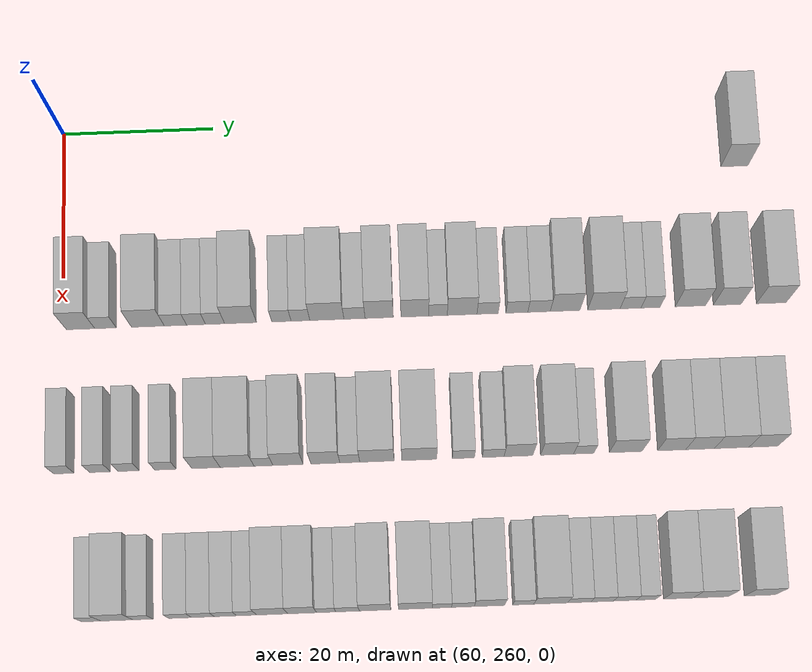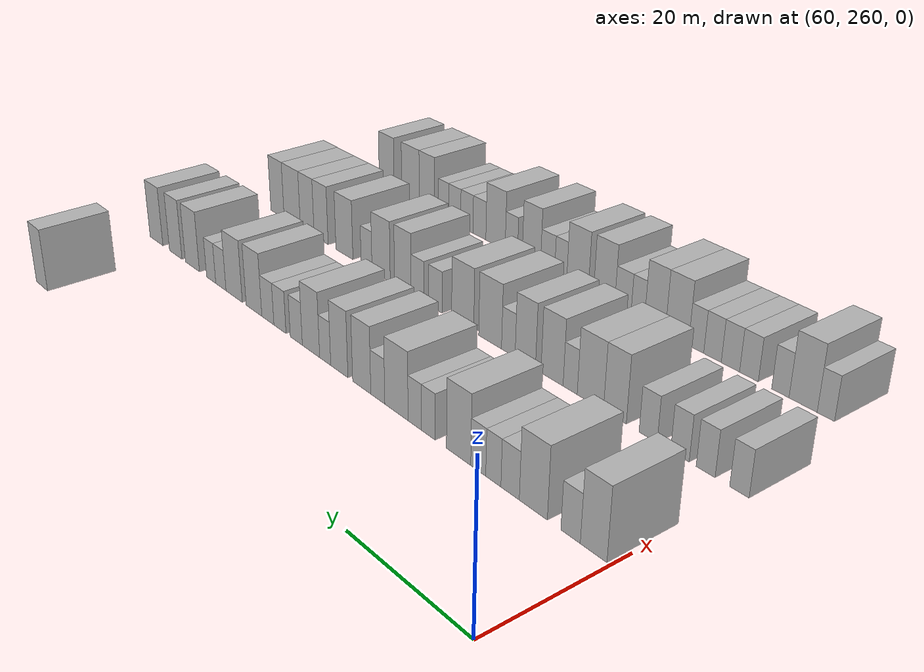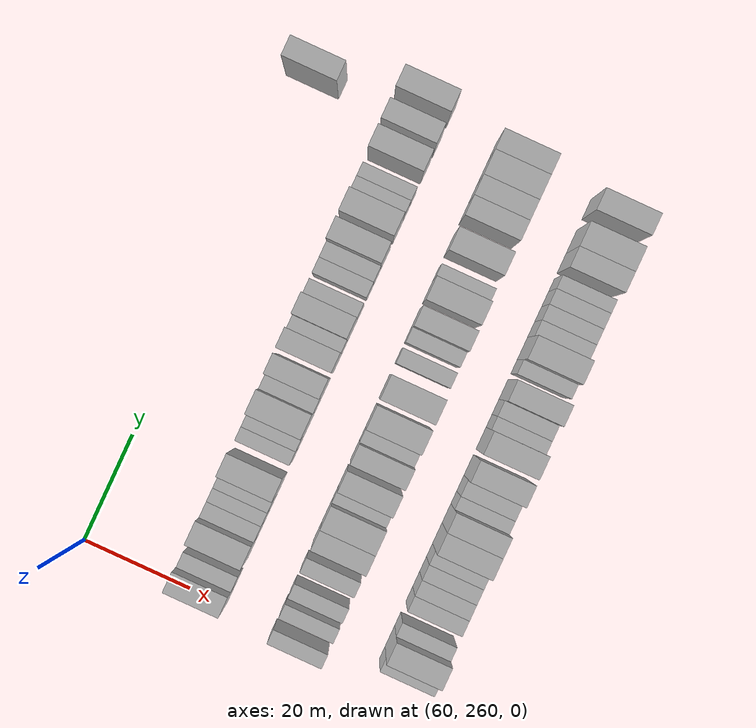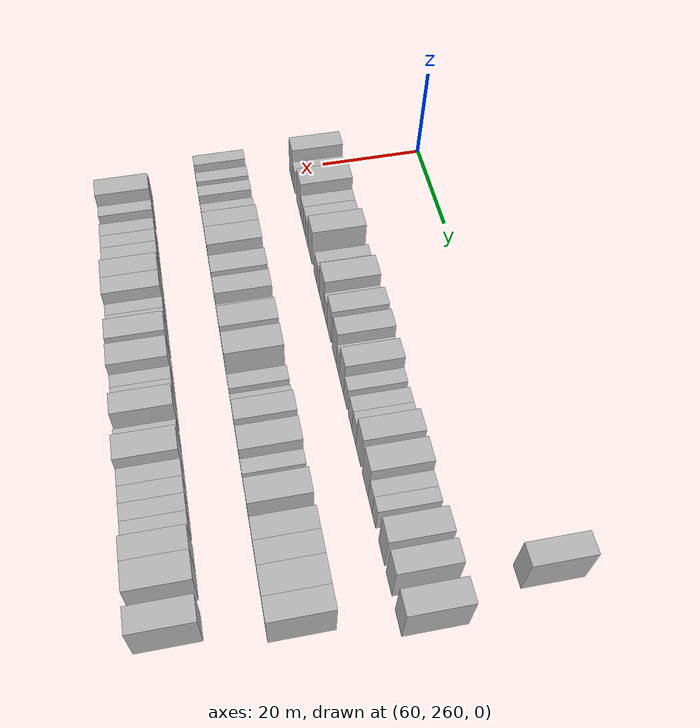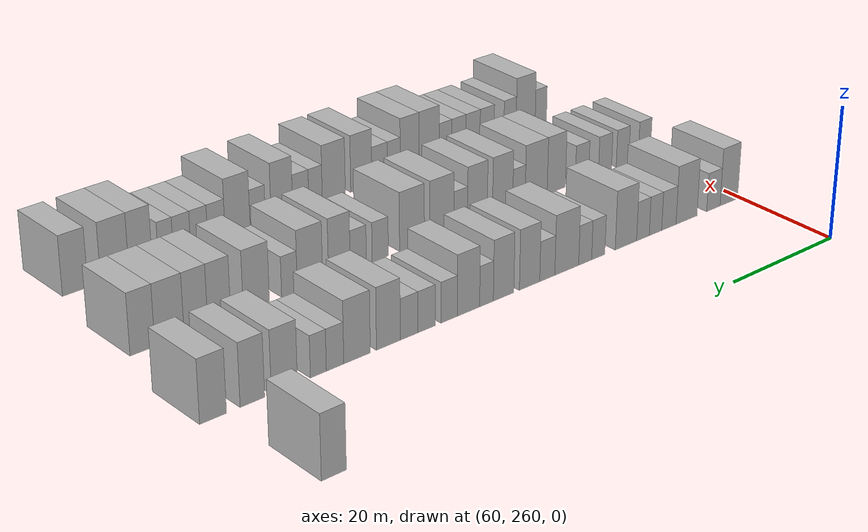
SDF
<sdf version="1.6">
 <world name="default">
  <model name="building_508">
   <static>1</static>
   <pose>63.0000 349.5474 0 0.000000 0.000000 0.000000</pose>
   <link name="link">
    <pose>0 0 4.50 0 0 0</pose>
    <collision name="collision"><geometry><box><size>10.0000 3.6459 9.0000</size></box></geometry></collision>
    <visual name="visual">
     <cast_shadows>0</cast_shadows>
     <geometry><box><size>10.0000 3.6459 9.0000</size></box></geometry>
     <material>
      <script>
       <uri>model://HANNAS_wall/materials/scripts</uri>
       <uri>model://HANNAS_wall/materials/textures</uri>
       <name>vrc/HANNAS_wall</name>
      </script>
     </material>
    </visual>
   </link>
  </model>
  <model name="building_665">
   <static>1</static>
   <pose>82.0000 262.3214 0 0.000000 0.000000 0.000000</pose>
   <link name="link">
    <pose>0 0 4.50 0 0 0</pose>
    <collision name="collision"><geometry><box><size>10.0000 3.7171 9.0000</size></box></geometry></collision>
    <visual name="visual">
     <cast_shadows>0</cast_shadows>
     <geometry><box><size>10.0000 3.7171 9.0000</size></box></geometry>
     <material>
      <script>
       <uri>model://HANNAS_wall/materials/scripts</uri>
       <uri>model://HANNAS_wall/materials/textures</uri>
       <name>vrc/HANNAS_wall</name>
      </script>
     </material>
    </visual>
   </link>
  </model>
  <model name="building_666">
   <static>1</static>
   <pose>82.0000 265.5808 0 0.000000 0.000000 0.000000</pose>
   <link name="link">
    <pose>0 0 3.00 0 0 0</pose>
    <collision name="collision"><geometry><box><size>10.0000 2.8018 6.0000</size></box></geometry></collision>
    <visual name="visual">
     <cast_shadows>0</cast_shadows>
     <geometry><box><size>10.0000 2.8018 6.0000</size></box></geometry>
     <material>
      <script>
       <uri>model://HANNAS_wall/materials/scripts</uri>
       <uri>model://HANNAS_wall/materials/textures</uri>
       <name>vrc/HANNAS_wall</name>
      </script>
     </material>
    </visual>
   </link>
  </model>
  <model name="building_667">
   <static>1</static>
   <pose>82.0000 271.1279 0 0.000000 0.000000 0.000000</pose>
   <link name="link">
    <pose>0 0 4.50 0 0 0</pose>
    <collision name="collision"><geometry><box><size>10.0000 4.2924 9.0000</size></box></geometry></collision>
    <visual name="visual">
     <cast_shadows>0</cast_shadows>
     <geometry><box><size>10.0000 4.2924 9.0000</size></box></geometry>
     <material>
      <script>
       <uri>model://HANNAS_wall/materials/scripts</uri>
       <uri>model://HANNAS_wall/materials/textures</uri>
       <name>vrc/HANNAS_wall</name>
      </script>
     </material>
    </visual>
   </link>
  </model>
  <model name="building_668">
   <static>1</static>
   <pose>82.0000 274.7312 0 0.000000 0.000000 0.000000</pose>
   <link name="link">
    <pose>0 0 3.00 0 0 0</pose>
    <collision name="collision"><geometry><box><size>10.0000 2.9143 6.0000</size></box></geometry></collision>
    <visual name="visual">
     <cast_shadows>0</cast_shadows>
     <geometry><box><size>10.0000 2.9143 6.0000</size></box></geometry>
     <material>
      <script>
       <uri>model://HANNAS_wall/materials/scripts</uri>
       <uri>model://HANNAS_wall/materials/textures</uri>
       <name>vrc/HANNAS_wall</name>
      </script>
     </material>
    </visual>
   </link>
  </model>
  <model name="building_669">
   <static>1</static>
   <pose>82.0000 277.4277 0 0.000000 0.000000 0.000000</pose>
   <link name="link">
    <pose>0 0 3.00 0 0 0</pose>
    <collision name="collision"><geometry><box><size>10.0000 2.4787 6.0000</size></box></geometry></collision>
    <visual name="visual">
     <cast_shadows>0</cast_shadows>
     <geometry><box><size>10.0000 2.4787 6.0000</size></box></geometry>
     <material>
      <script>
       <uri>model://HANNAS_wall/materials/scripts</uri>
       <uri>model://HANNAS_wall/materials/textures</uri>
       <name>vrc/HANNAS_wall</name>
      </script>
     </material>
    </visual>
   </link>
  </model>
  <model name="building_670">
   <static>1</static>
   <pose>82.0000 279.9191 0 0.000000 0.000000 0.000000</pose>
   <link name="link">
    <pose>0 0 3.00 0 0 0</pose>
    <collision name="collision"><geometry><box><size>10.0000 2.5040 6.0000</size></box></geometry></collision>
    <visual name="visual">
     <cast_shadows>0</cast_shadows>
     <geometry><box><size>10.0000 2.5040 6.0000</size></box></geometry>
     <material>
      <script>
       <uri>model://HANNAS_wall/materials/scripts</uri>
       <uri>model://HANNAS_wall/materials/textures</uri>
       <name>vrc/HANNAS_wall</name>
      </script>
     </material>
    </visual>
   </link>
  </model>
  <model name="building_671">
   <static>1</static>
   <pose>82.0000 283.2622 0 0.000000 0.000000 0.000000</pose>
   <link name="link">
    <pose>0 0 4.50 0 0 0</pose>
    <collision name="collision"><geometry><box><size>10.0000 4.1823 9.0000</size></box></geometry></collision>
    <visual name="visual">
     <cast_shadows>0</cast_shadows>
     <geometry><box><size>10.0000 4.1823 9.0000</size></box></geometry>
     <material>
      <script>
       <uri>model://HANNAS_wall/materials/scripts</uri>
       <uri>model://HANNAS_wall/materials/textures</uri>
       <name>vrc/HANNAS_wall</name>
      </script>
     </material>
    </visual>
   </link>
  </model>
  <model name="building_672">
   <static>1</static>
   <pose>82.0000 288.6186 0 0.000000 0.000000 0.000000</pose>
   <link name="link">
    <pose>0 0 3.00 0 0 0</pose>
    <collision name="collision"><geometry><box><size>10.0000 2.5306 6.0000</size></box></geometry></collision>
    <visual name="visual">
     <cast_shadows>0</cast_shadows>
     <geometry><box><size>10.0000 2.5306 6.0000</size></box></geometry>
     <material>
      <script>
       <uri>model://HANNAS_wall/materials/scripts</uri>
       <uri>model://HANNAS_wall/materials/textures</uri>
       <name>vrc/HANNAS_wall</name>
      </script>
     </material>
    </visual>
   </link>
  </model>
  <model name="building_673">
   <static>1</static>
   <pose>82.0000 291.1114 0 0.000000 0.000000 0.000000</pose>
   <link name="link">
    <pose>0 0 3.00 0 0 0</pose>
    <collision name="collision"><geometry><box><size>10.0000 2.4549 6.0000</size></box></geometry></collision>
    <visual name="visual">
     <cast_shadows>0</cast_shadows>
     <geometry><box><size>10.0000 2.4549 6.0000</size></box></geometry>
     <material>
      <script>
       <uri>model://HANNAS_wall/materials/scripts</uri>
       <uri>model://HANNAS_wall/materials/textures</uri>
       <name>vrc/HANNAS_wall</name>
      </script>
     </material>
    </visual>
   </link>
  </model>
  <model name="building_674">
   <static>1</static>
   <pose>82.0000 294.5713 0 0.000000 0.000000 0.000000</pose>
   <link name="link">
    <pose>0 0 4.50 0 0 0</pose>
    <collision name="collision"><geometry><box><size>10.0000 4.4648 9.0000</size></box></geometry></collision>
    <visual name="visual">
     <cast_shadows>0</cast_shadows>
     <geometry><box><size>10.0000 4.4648 9.0000</size></box></geometry>
     <material>
      <script>
       <uri>model://HANNAS_wall/materials/scripts</uri>
       <uri>model://HANNAS_wall/materials/textures</uri>
       <name>vrc/HANNAS_wall</name>
      </script>
     </material>
    </visual>
   </link>
  </model>
  <model name="building_675">
   <static>1</static>
   <pose>82.0000 298.1911 0 0.000000 0.000000 0.000000</pose>
   <link name="link">
    <pose>0 0 3.00 0 0 0</pose>
    <collision name="collision"><geometry><box><size>10.0000 2.7749 6.0000</size></box></geometry></collision>
    <visual name="visual">
     <cast_shadows>0</cast_shadows>
     <geometry><box><size>10.0000 2.7749 6.0000</size></box></geometry>
     <material>
      <script>
       <uri>model://HANNAS_wall/materials/scripts</uri>
       <uri>model://HANNAS_wall/materials/textures</uri>
       <name>vrc/HANNAS_wall</name>
      </script>
     </material>
    </visual>
   </link>
  </model>
  <model name="building_676">
   <static>1</static>
   <pose>82.0000 301.4313 0 0.000000 0.000000 0.000000</pose>
   <link name="link">
    <pose>0 0 4.50 0 0 0</pose>
    <collision name="collision"><geometry><box><size>10.0000 3.7056 9.0000</size></box></geometry></collision>
    <visual name="visual">
     <cast_shadows>0</cast_shadows>
     <geometry><box><size>10.0000 3.7056 9.0000</size></box></geometry>
     <material>
      <script>
       <uri>model://HANNAS_wall/materials/scripts</uri>
       <uri>model://HANNAS_wall/materials/textures</uri>
       <name>vrc/HANNAS_wall</name>
      </script>
     </material>
    </visual>
   </link>
  </model>
  <model name="building_677">
   <static>1</static>
   <pose>82.0000 306.1075 0 0.000000 0.000000 0.000000</pose>
   <link name="link">
    <pose>0 0 4.50 0 0 0</pose>
    <collision name="collision"><geometry><box><size>10.0000 3.6467 9.0000</size></box></geometry></collision>
    <visual name="visual">
     <cast_shadows>0</cast_shadows>
     <geometry><box><size>10.0000 3.6467 9.0000</size></box></geometry>
     <material>
      <script>
       <uri>model://HANNAS_wall/materials/scripts</uri>
       <uri>model://HANNAS_wall/materials/textures</uri>
       <name>vrc/HANNAS_wall</name>
      </script>
     </material>
    </visual>
   </link>
  </model>
  <model name="building_678">
   <static>1</static>
   <pose>82.0000 309.1398 0 0.000000 0.000000 0.000000</pose>
   <link name="link">
    <pose>0 0 3.00 0 0 0</pose>
    <collision name="collision"><geometry><box><size>10.0000 2.4180 6.0000</size></box></geometry></collision>
    <visual name="visual">
     <cast_shadows>0</cast_shadows>
     <geometry><box><size>10.0000 2.4180 6.0000</size></box></geometry>
     <material>
      <script>
       <uri>model://HANNAS_wall/materials/scripts</uri>
       <uri>model://HANNAS_wall/materials/textures</uri>
       <name>vrc/HANNAS_wall</name>
      </script>
     </material>
    </visual>
   </link>
  </model>
  <model name="building_679">
   <static>1</static>
   <pose>82.0000 312.2969 0 0.000000 0.000000 0.000000</pose>
   <link name="link">
    <pose>0 0 4.50 0 0 0</pose>
    <collision name="collision"><geometry><box><size>10.0000 3.8962 9.0000</size></box></geometry></collision>
    <visual name="visual">
     <cast_shadows>0</cast_shadows>
     <geometry><box><size>10.0000 3.8962 9.0000</size></box></geometry>
     <material>
      <script>
       <uri>model://HANNAS_wall/materials/scripts</uri>
       <uri>model://HANNAS_wall/materials/textures</uri>
       <name>vrc/HANNAS_wall</name>
      </script>
     </material>
    </visual>
   </link>
  </model>
  <model name="building_680">
   <static>1</static>
   <pose>82.0000 315.6387 0 0.000000 0.000000 0.000000</pose>
   <link name="link">
    <pose>0 0 3.00 0 0 0</pose>
    <collision name="collision"><geometry><box><size>10.0000 2.7873 6.0000</size></box></geometry></collision>
    <visual name="visual">
     <cast_shadows>0</cast_shadows>
     <geometry><box><size>10.0000 2.7873 6.0000</size></box></geometry>
     <material>
      <script>
       <uri>model://HANNAS_wall/materials/scripts</uri>
       <uri>model://HANNAS_wall/materials/textures</uri>
       <name>vrc/HANNAS_wall</name>
      </script>
     </material>
    </visual>
   </link>
  </model>
  <model name="building_681">
   <static>1</static>
   <pose>82.0000 319.4755 0 0.000000 0.000000 0.000000</pose>
   <link name="link">
    <pose>0 0 3.00 0 0 0</pose>
    <collision name="collision"><geometry><box><size>10.0000 2.8862 6.0000</size></box></geometry></collision>
    <visual name="visual">
     <cast_shadows>0</cast_shadows>
     <geometry><box><size>10.0000 2.8862 6.0000</size></box></geometry>
     <material>
      <script>
       <uri>model://HANNAS_wall/materials/scripts</uri>
       <uri>model://HANNAS_wall/materials/textures</uri>
       <name>vrc/HANNAS_wall</name>
      </script>
     </material>
    </visual>
   </link>
  </model>
  <model name="building_682">
   <static>1</static>
   <pose>82.0000 322.3924 0 0.000000 0.000000 0.000000</pose>
   <link name="link">
    <pose>0 0 3.00 0 0 0</pose>
    <collision name="collision"><geometry><box><size>10.0000 2.9476 6.0000</size></box></geometry></collision>
    <visual name="visual">
     <cast_shadows>0</cast_shadows>
     <geometry><box><size>10.0000 2.9476 6.0000</size></box></geometry>
     <material>
      <script>
       <uri>model://HANNAS_wall/materials/scripts</uri>
       <uri>model://HANNAS_wall/materials/textures</uri>
       <name>vrc/HANNAS_wall</name>
      </script>
     </material>
    </visual>
   </link>
  </model>
  <model name="building_683">
   <static>1</static>
   <pose>82.0000 325.8263 0 0.000000 0.000000 0.000000</pose>
   <link name="link">
    <pose>0 0 4.50 0 0 0</pose>
    <collision name="collision"><geometry><box><size>10.0000 3.9203 9.0000</size></box></geometry></collision>
    <visual name="visual">
     <cast_shadows>0</cast_shadows>
     <geometry><box><size>10.0000 3.9203 9.0000</size></box></geometry>
     <material>
      <script>
       <uri>model://HANNAS_wall/materials/scripts</uri>
       <uri>model://HANNAS_wall/materials/textures</uri>
       <name>vrc/HANNAS_wall</name>
      </script>
     </material>
    </visual>
   </link>
  </model>
  <model name="building_684">
   <static>1</static>
   <pose>82.0000 330.9159 0 0.000000 0.000000 0.000000</pose>
   <link name="link">
    <pose>0 0 4.50 0 0 0</pose>
    <collision name="collision"><geometry><box><size>10.0000 4.2589 9.0000</size></box></geometry></collision>
    <visual name="visual">
     <cast_shadows>0</cast_shadows>
     <geometry><box><size>10.0000 4.2589 9.0000</size></box></geometry>
     <material>
      <script>
       <uri>model://HANNAS_wall/materials/scripts</uri>
       <uri>model://HANNAS_wall/materials/textures</uri>
       <name>vrc/HANNAS_wall</name>
      </script>
     </material>
    </visual>
   </link>
  </model>
  <model name="building_685">
   <static>1</static>
   <pose>82.0000 334.4254 0 0.000000 0.000000 0.000000</pose>
   <link name="link">
    <pose>0 0 3.00 0 0 0</pose>
    <collision name="collision"><geometry><box><size>10.0000 2.7600 6.0000</size></box></geometry></collision>
    <visual name="visual">
     <cast_shadows>0</cast_shadows>
     <geometry><box><size>10.0000 2.7600 6.0000</size></box></geometry>
     <material>
      <script>
       <uri>model://HANNAS_wall/materials/scripts</uri>
       <uri>model://HANNAS_wall/materials/textures</uri>
       <name>vrc/HANNAS_wall</name>
      </script>
     </material>
    </visual>
   </link>
  </model>
  <model name="building_686">
   <static>1</static>
   <pose>82.0000 337.0541 0 0.000000 0.000000 0.000000</pose>
   <link name="link">
    <pose>0 0 3.00 0 0 0</pose>
    <collision name="collision"><geometry><box><size>10.0000 2.4975 6.0000</size></box></geometry></collision>
    <visual name="visual">
     <cast_shadows>0</cast_shadows>
     <geometry><box><size>10.0000 2.4975 6.0000</size></box></geometry>
     <material>
      <script>
       <uri>model://HANNAS_wall/materials/scripts</uri>
       <uri>model://HANNAS_wall/materials/textures</uri>
       <name>vrc/HANNAS_wall</name>
      </script>
     </material>
    </visual>
   </link>
  </model>
  <model name="building_687">
   <static>1</static>
   <pose>82.0000 342.3042 0 0.000000 0.000000 0.000000</pose>
   <link name="link">
    <pose>0 0 4.50 0 0 0</pose>
    <collision name="collision"><geometry><box><size>10.0000 4.0026 9.0000</size></box></geometry></collision>
    <visual name="visual">
     <cast_shadows>0</cast_shadows>
     <geometry><box><size>10.0000 4.0026 9.0000</size></box></geometry>
     <material>
      <script>
       <uri>model://HANNAS_wall/materials/scripts</uri>
       <uri>model://HANNAS_wall/materials/textures</uri>
       <name>vrc/HANNAS_wall</name>
      </script>
     </material>
    </visual>
   </link>
  </model>
  <model name="building_688">
   <static>1</static>
   <pose>82.0000 347.1461 0 0.000000 0.000000 0.000000</pose>
   <link name="link">
    <pose>0 0 4.50 0 0 0</pose>
    <collision name="collision"><geometry><box><size>10.0000 3.6812 9.0000</size></box></geometry></collision>
    <visual name="visual">
     <cast_shadows>0</cast_shadows>
     <geometry><box><size>10.0000 3.6812 9.0000</size></box></geometry>
     <material>
      <script>
       <uri>model://HANNAS_wall/materials/scripts</uri>
       <uri>model://HANNAS_wall/materials/textures</uri>
       <name>vrc/HANNAS_wall</name>
      </script>
     </material>
    </visual>
   </link>
  </model>
  <model name="building_689">
   <static>1</static>
   <pose>82.0000 352.9526 0 0.000000 0.000000 0.000000</pose>
   <link name="link">
    <pose>0 0 4.50 0 0 0</pose>
    <collision name="collision"><geometry><box><size>10.0000 3.9319 9.0000</size></box></geometry></collision>
    <visual name="visual">
     <cast_shadows>0</cast_shadows>
     <geometry><box><size>10.0000 3.9319 9.0000</size></box></geometry>
     <material>
      <script>
       <uri>model://HANNAS_wall/materials/scripts</uri>
       <uri>model://HANNAS_wall/materials/textures</uri>
       <name>vrc/HANNAS_wall</name>
      </script>
     </material>
    </visual>
   </link>
  </model>
  <model name="building_834">
   <static>1</static>
   <pose>101.0000 260.2428 0 0.000000 0.000000 0.000000</pose>
   <link name="link">
    <pose>0 0 3.00 0 0 0</pose>
    <collision name="collision"><geometry><box><size>10.0000 2.6136 6.0000</size></box></geometry></collision>
    <visual name="visual">
     <cast_shadows>0</cast_shadows>
     <geometry><box><size>10.0000 2.6136 6.0000</size></box></geometry>
     <material>
      <script>
       <uri>model://HANNAS_wall/materials/scripts</uri>
       <uri>model://HANNAS_wall/materials/textures</uri>
       <name>vrc/HANNAS_wall</name>
      </script>
     </material>
    </visual>
   </link>
  </model>
  <model name="building_835">
   <static>1</static>
   <pose>101.0000 264.8815 0 0.000000 0.000000 0.000000</pose>
   <link name="link">
    <pose>0 0 3.00 0 0 0</pose>
    <collision name="collision"><geometry><box><size>10.0000 2.6639 6.0000</size></box></geometry></collision>
    <visual name="visual">
     <cast_shadows>0</cast_shadows>
     <geometry><box><size>10.0000 2.6639 6.0000</size></box></geometry>
     <material>
      <script>
       <uri>model://HANNAS_wall/materials/scripts</uri>
       <uri>model://HANNAS_wall/materials/textures</uri>
       <name>vrc/HANNAS_wall</name>
      </script>
     </material>
    </visual>
   </link>
  </model>
  <model name="building_836">
   <static>1</static>
   <pose>101.0000 268.5681 0 0.000000 0.000000 0.000000</pose>
   <link name="link">
    <pose>0 0 3.00 0 0 0</pose>
    <collision name="collision"><geometry><box><size>10.0000 2.7093 6.0000</size></box></geometry></collision>
    <visual name="visual">
     <cast_shadows>0</cast_shadows>
     <geometry><box><size>10.0000 2.7093 6.0000</size></box></geometry>
     <material>
      <script>
       <uri>model://HANNAS_wall/materials/scripts</uri>
       <uri>model://HANNAS_wall/materials/textures</uri>
       <name>vrc/HANNAS_wall</name>
      </script>
     </material>
    </visual>
   </link>
  </model>
  <model name="building_837">
   <static>1</static>
   <pose>101.0000 273.3015 0 0.000000 0.000000 0.000000</pose>
   <link name="link">
    <pose>0 0 3.00 0 0 0</pose>
    <collision name="collision"><geometry><box><size>10.0000 2.7575 6.0000</size></box></geometry></collision>
    <visual name="visual">
     <cast_shadows>0</cast_shadows>
     <geometry><box><size>10.0000 2.7575 6.0000</size></box></geometry>
     <material>
      <script>
       <uri>model://HANNAS_wall/materials/scripts</uri>
       <uri>model://HANNAS_wall/materials/textures</uri>
       <name>vrc/HANNAS_wall</name>
      </script>
     </material>
    </visual>
   </link>
  </model>
  <model name="building_838">
   <static>1</static>
   <pose>101.0000 278.5074 0 0.000000 0.000000 0.000000</pose>
   <link name="link">
    <pose>0 0 4.50 0 0 0</pose>
    <collision name="collision"><geometry><box><size>10.0000 3.6541 9.0000</size></box></geometry></collision>
    <visual name="visual">
     <cast_shadows>0</cast_shadows>
     <geometry><box><size>10.0000 3.6541 9.0000</size></box></geometry>
     <material>
      <script>
       <uri>model://HANNAS_wall/materials/scripts</uri>
       <uri>model://HANNAS_wall/materials/textures</uri>
       <name>vrc/HANNAS_wall</name>
      </script>
     </material>
    </visual>
   </link>
  </model>
  <model name="building_839">
   <static>1</static>
   <pose>101.0000 282.5134 0 0.000000 0.000000 0.000000</pose>
   <link name="link">
    <pose>0 0 4.50 0 0 0</pose>
    <collision name="collision"><geometry><box><size>10.0000 4.3580 9.0000</size></box></geometry></collision>
    <visual name="visual">
     <cast_shadows>0</cast_shadows>
     <geometry><box><size>10.0000 4.3580 9.0000</size></box></geometry>
     <material>
      <script>
       <uri>model://HANNAS_wall/materials/scripts</uri>
       <uri>model://HANNAS_wall/materials/textures</uri>
       <name>vrc/HANNAS_wall</name>
      </script>
     </material>
    </visual>
   </link>
  </model>
  <model name="building_840">
   <static>1</static>
   <pose>101.0000 285.8989 0 0.000000 0.000000 0.000000</pose>
   <link name="link">
    <pose>0 0 3.00 0 0 0</pose>
    <collision name="collision"><geometry><box><size>10.0000 2.4128 6.0000</size></box></geometry></collision>
    <visual name="visual">
     <cast_shadows>0</cast_shadows>
     <geometry><box><size>10.0000 2.4128 6.0000</size></box></geometry>
     <material>
      <script>
       <uri>model://HANNAS_wall/materials/scripts</uri>
       <uri>model://HANNAS_wall/materials/textures</uri>
       <name>vrc/HANNAS_wall</name>
      </script>
     </material>
    </visual>
   </link>
  </model>
  <model name="building_841">
   <static>1</static>
   <pose>101.0000 289.0530 0 0.000000 0.000000 0.000000</pose>
   <link name="link">
    <pose>0 0 4.50 0 0 0</pose>
    <collision name="collision"><geometry><box><size>10.0000 3.8955 9.0000</size></box></geometry></collision>
    <visual name="visual">
     <cast_shadows>0</cast_shadows>
     <geometry><box><size>10.0000 3.8955 9.0000</size></box></geometry>
     <material>
      <script>
       <uri>model://HANNAS_wall/materials/scripts</uri>
       <uri>model://HANNAS_wall/materials/textures</uri>
       <name>vrc/HANNAS_wall</name>
      </script>
     </material>
    </visual>
   </link>
  </model>
  <model name="building_842">
   <static>1</static>
   <pose>101.0000 293.8676 0 0.000000 0.000000 0.000000</pose>
   <link name="link">
    <pose>0 0 4.50 0 0 0</pose>
    <collision name="collision"><geometry><box><size>10.0000 3.7338 9.0000</size></box></geometry></collision>
    <visual name="visual">
     <cast_shadows>0</cast_shadows>
     <geometry><box><size>10.0000 3.7338 9.0000</size></box></geometry>
     <material>
      <script>
       <uri>model://HANNAS_wall/materials/scripts</uri>
       <uri>model://HANNAS_wall/materials/textures</uri>
       <name>vrc/HANNAS_wall</name>
      </script>
     </material>
    </visual>
   </link>
  </model>
  <model name="building_843">
   <static>1</static>
   <pose>101.0000 297.0128 0 0.000000 0.000000 0.000000</pose>
   <link name="link">
    <pose>0 0 3.00 0 0 0</pose>
    <collision name="collision"><geometry><box><size>10.0000 2.5566 6.0000</size></box></geometry></collision>
    <visual name="visual">
     <cast_shadows>0</cast_shadows>
     <geometry><box><size>10.0000 2.5566 6.0000</size></box></geometry>
     <material>
      <script>
       <uri>model://HANNAS_wall/materials/scripts</uri>
       <uri>model://HANNAS_wall/materials/textures</uri>
       <name>vrc/HANNAS_wall</name>
      </script>
     </material>
    </visual>
   </link>
  </model>
  <model name="building_844">
   <static>1</static>
   <pose>101.0000 300.5026 0 0.000000 0.000000 0.000000</pose>
   <link name="link">
    <pose>0 0 4.50 0 0 0</pose>
    <collision name="collision"><geometry><box><size>10.0000 4.4230 9.0000</size></box></geometry></collision>
    <visual name="visual">
     <cast_shadows>0</cast_shadows>
     <geometry><box><size>10.0000 4.4230 9.0000</size></box></geometry>
     <material>
      <script>
       <uri>model://HANNAS_wall/materials/scripts</uri>
       <uri>model://HANNAS_wall/materials/textures</uri>
       <name>vrc/HANNAS_wall</name>
      </script>
     </material>
    </visual>
   </link>
  </model>
  <model name="building_845">
   <static>1</static>
   <pose>101.0000 305.9583 0 0.000000 0.000000 0.000000</pose>
   <link name="link">
    <pose>0 0 4.50 0 0 0</pose>
    <collision name="collision"><geometry><box><size>10.0000 4.4885 9.0000</size></box></geometry></collision>
    <visual name="visual">
     <cast_shadows>0</cast_shadows>
     <geometry><box><size>10.0000 4.4885 9.0000</size></box></geometry>
     <material>
      <script>
       <uri>model://HANNAS_wall/materials/scripts</uri>
       <uri>model://HANNAS_wall/materials/textures</uri>
       <name>vrc/HANNAS_wall</name>
      </script>
     </material>
    </visual>
   </link>
  </model>
  <model name="building_846">
   <static>1</static>
   <pose>101.0000 311.6291 0 0.000000 0.000000 0.000000</pose>
   <link name="link">
    <pose>0 0 3.00 0 0 0</pose>
    <collision name="collision"><geometry><box><size>10.0000 2.8529 6.0000</size></box></geometry></collision>
    <visual name="visual">
     <cast_shadows>0</cast_shadows>
     <geometry><box><size>10.0000 2.8529 6.0000</size></box></geometry>
     <material>
      <script>
       <uri>model://HANNAS_wall/materials/scripts</uri>
       <uri>model://HANNAS_wall/materials/textures</uri>
       <name>vrc/HANNAS_wall</name>
      </script>
     </material>
    </visual>
   </link>
  </model>
  <model name="building_847">
   <static>1</static>
   <pose>101.0000 315.4611 0 0.000000 0.000000 0.000000</pose>
   <link name="link">
    <pose>0 0 3.00 0 0 0</pose>
    <collision name="collision"><geometry><box><size>10.0000 2.8112 6.0000</size></box></geometry></collision>
    <visual name="visual">
     <cast_shadows>0</cast_shadows>
     <geometry><box><size>10.0000 2.8112 6.0000</size></box></geometry>
     <material>
      <script>
       <uri>model://HANNAS_wall/materials/scripts</uri>
       <uri>model://HANNAS_wall/materials/textures</uri>
       <name>vrc/HANNAS_wall</name>
      </script>
     </material>
    </visual>
   </link>
  </model>
  <model name="building_848">
   <static>1</static>
   <pose>101.0000 318.7270 0 0.000000 0.000000 0.000000</pose>
   <link name="link">
    <pose>0 0 4.50 0 0 0</pose>
    <collision name="collision"><geometry><box><size>10.0000 3.7206 9.0000</size></box></geometry></collision>
    <visual name="visual">
     <cast_shadows>0</cast_shadows>
     <geometry><box><size>10.0000 3.7206 9.0000</size></box></geometry>
     <material>
      <script>
       <uri>model://HANNAS_wall/materials/scripts</uri>
       <uri>model://HANNAS_wall/materials/textures</uri>
       <name>vrc/HANNAS_wall</name>
      </script>
     </material>
    </visual>
   </link>
  </model>
  <model name="building_849">
   <static>1</static>
   <pose>101.0000 323.7167 0 0.000000 0.000000 0.000000</pose>
   <link name="link">
    <pose>0 0 4.50 0 0 0</pose>
    <collision name="collision"><geometry><box><size>10.0000 4.2587 9.0000</size></box></geometry></collision>
    <visual name="visual">
     <cast_shadows>0</cast_shadows>
     <geometry><box><size>10.0000 4.2587 9.0000</size></box></geometry>
     <material>
      <script>
       <uri>model://HANNAS_wall/materials/scripts</uri>
       <uri>model://HANNAS_wall/materials/textures</uri>
       <name>vrc/HANNAS_wall</name>
      </script>
     </material>
    </visual>
   </link>
  </model>
  <model name="building_850">
   <static>1</static>
   <pose>101.0000 327.1508 0 0.000000 0.000000 0.000000</pose>
   <link name="link">
    <pose>0 0 3.00 0 0 0</pose>
    <collision name="collision"><geometry><box><size>10.0000 2.6095 6.0000</size></box></geometry></collision>
    <visual name="visual">
     <cast_shadows>0</cast_shadows>
     <geometry><box><size>10.0000 2.6095 6.0000</size></box></geometry>
     <material>
      <script>
       <uri>model://HANNAS_wall/materials/scripts</uri>
       <uri>model://HANNAS_wall/materials/textures</uri>
       <name>vrc/HANNAS_wall</name>
      </script>
     </material>
    </visual>
   </link>
  </model>
  <model name="building_851">
   <static>1</static>
   <pose>101.0000 332.5759 0 0.000000 0.000000 0.000000</pose>
   <link name="link">
    <pose>0 0 4.50 0 0 0</pose>
    <collision name="collision"><geometry><box><size>10.0000 4.2408 9.0000</size></box></geometry></collision>
    <visual name="visual">
     <cast_shadows>0</cast_shadows>
     <geometry><box><size>10.0000 4.2408 9.0000</size></box></geometry>
     <material>
      <script>
       <uri>model://HANNAS_wall/materials/scripts</uri>
       <uri>model://HANNAS_wall/materials/textures</uri>
       <name>vrc/HANNAS_wall</name>
      </script>
     </material>
    </visual>
   </link>
  </model>
  <model name="building_852">
   <static>1</static>
   <pose>101.0000 338.5177 0 0.000000 0.000000 0.000000</pose>
   <link name="link">
    <pose>0 0 4.50 0 0 0</pose>
    <collision name="collision"><geometry><box><size>10.0000 3.6427 9.0000</size></box></geometry></collision>
    <visual name="visual">
     <cast_shadows>0</cast_shadows>
     <geometry><box><size>10.0000 3.6427 9.0000</size></box></geometry>
     <material>
      <script>
       <uri>model://HANNAS_wall/materials/scripts</uri>
       <uri>model://HANNAS_wall/materials/textures</uri>
       <name>vrc/HANNAS_wall</name>
      </script>
     </material>
    </visual>
   </link>
  </model>
  <model name="building_853">
   <static>1</static>
   <pose>101.0000 342.1835 0 0.000000 0.000000 0.000000</pose>
   <link name="link">
    <pose>0 0 4.50 0 0 0</pose>
    <collision name="collision"><geometry><box><size>10.0000 3.6889 9.0000</size></box></geometry></collision>
    <visual name="visual">
     <cast_shadows>0</cast_shadows>
     <geometry><box><size>10.0000 3.6889 9.0000</size></box></geometry>
     <material>
      <script>
       <uri>model://HANNAS_wall/materials/scripts</uri>
       <uri>model://HANNAS_wall/materials/textures</uri>
       <name>vrc/HANNAS_wall</name>
      </script>
     </material>
    </visual>
   </link>
  </model>
  <model name="building_854">
   <static>1</static>
   <pose>101.0000 346.2707 0 0.000000 0.000000 0.000000</pose>
   <link name="link">
    <pose>0 0 4.50 0 0 0</pose>
    <collision name="collision"><geometry><box><size>10.0000 4.4856 9.0000</size></box></geometry></collision>
    <visual name="visual">
     <cast_shadows>0</cast_shadows>
     <geometry><box><size>10.0000 4.4856 9.0000</size></box></geometry>
     <material>
      <script>
       <uri>model://HANNAS_wall/materials/scripts</uri>
       <uri>model://HANNAS_wall/materials/textures</uri>
       <name>vrc/HANNAS_wall</name>
      </script>
     </material>
    </visual>
   </link>
  </model>
  <model name="building_855">
   <static>1</static>
   <pose>101.0000 350.3792 0 0.000000 0.000000 0.000000</pose>
   <link name="link">
    <pose>0 0 4.50 0 0 0</pose>
    <collision name="collision"><geometry><box><size>10.0000 3.7314 9.0000</size></box></geometry></collision>
    <visual name="visual">
     <cast_shadows>0</cast_shadows>
     <geometry><box><size>10.0000 3.7314 9.0000</size></box></geometry>
     <material>
      <script>
       <uri>model://HANNAS_wall/materials/scripts</uri>
       <uri>model://HANNAS_wall/materials/textures</uri>
       <name>vrc/HANNAS_wall</name>
      </script>
     </material>
    </visual>
   </link>
  </model>
  <model name="building_1007">
   <static>1</static>
   <pose>120.0000 263.8099 0 0.000000 0.000000 0.000000</pose>
   <link name="link">
    <pose>0 0 3.00 0 0 0</pose>
    <collision name="collision"><geometry><box><size>10.0000 2.4139 6.0000</size></box></geometry></collision>
    <visual name="visual">
     <cast_shadows>0</cast_shadows>
     <geometry><box><size>10.0000 2.4139 6.0000</size></box></geometry>
     <material>
      <script>
       <uri>model://HANNAS_wall/materials/scripts</uri>
       <uri>model://HANNAS_wall/materials/textures</uri>
       <name>vrc/HANNAS_wall</name>
      </script>
     </material>
    </visual>
   </link>
  </model>
  <model name="building_1008">
   <static>1</static>
   <pose>120.0000 267.0240 0 0.000000 0.000000 0.000000</pose>
   <link name="link">
    <pose>0 0 4.50 0 0 0</pose>
    <collision name="collision"><geometry><box><size>10.0000 4.0144 9.0000</size></box></geometry></collision>
    <visual name="visual">
     <cast_shadows>0</cast_shadows>
     <geometry><box><size>10.0000 4.0144 9.0000</size></box></geometry>
     <material>
      <script>
       <uri>model://HANNAS_wall/materials/scripts</uri>
       <uri>model://HANNAS_wall/materials/textures</uri>
       <name>vrc/HANNAS_wall</name>
      </script>
     </material>
    </visual>
   </link>
  </model>
  <model name="building_1009">
   <static>1</static>
   <pose>120.0000 270.3070 0 0.000000 0.000000 0.000000</pose>
   <link name="link">
    <pose>0 0 3.00 0 0 0</pose>
    <collision name="collision"><geometry><box><size>10.0000 2.5515 6.0000</size></box></geometry></collision>
    <visual name="visual">
     <cast_shadows>0</cast_shadows>
     <geometry><box><size>10.0000 2.5515 6.0000</size></box></geometry>
     <material>
      <script>
       <uri>model://HANNAS_wall/materials/scripts</uri>
       <uri>model://HANNAS_wall/materials/textures</uri>
       <name>vrc/HANNAS_wall</name>
      </script>
     </material>
    </visual>
   </link>
  </model>
  <model name="building_1010">
   <static>1</static>
   <pose>120.0000 275.0174 0 0.000000 0.000000 0.000000</pose>
   <link name="link">
    <pose>0 0 3.00 0 0 0</pose>
    <collision name="collision"><geometry><box><size>10.0000 2.8694 6.0000</size></box></geometry></collision>
    <visual name="visual">
     <cast_shadows>0</cast_shadows>
     <geometry><box><size>10.0000 2.8694 6.0000</size></box></geometry>
     <material>
      <script>
       <uri>model://HANNAS_wall/materials/scripts</uri>
       <uri>model://HANNAS_wall/materials/textures</uri>
       <name>vrc/HANNAS_wall</name>
      </script>
     </material>
    </visual>
   </link>
  </model>
  <model name="building_1011">
   <static>1</static>
   <pose>120.0000 277.8928 0 0.000000 0.000000 0.000000</pose>
   <link name="link">
    <pose>0 0 3.00 0 0 0</pose>
    <collision name="collision"><geometry><box><size>10.0000 2.8814 6.0000</size></box></geometry></collision>
    <visual name="visual">
     <cast_shadows>0</cast_shadows>
     <geometry><box><size>10.0000 2.8814 6.0000</size></box></geometry>
     <material>
      <script>
       <uri>model://HANNAS_wall/materials/scripts</uri>
       <uri>model://HANNAS_wall/materials/textures</uri>
       <name>vrc/HANNAS_wall</name>
      </script>
     </material>
    </visual>
   </link>
  </model>
  <model name="building_1012">
   <static>1</static>
   <pose>120.0000 280.7447 0 0.000000 0.000000 0.000000</pose>
   <link name="link">
    <pose>0 0 3.00 0 0 0</pose>
    <collision name="collision"><geometry><box><size>10.0000 2.8224 6.0000</size></box></geometry></collision>
    <visual name="visual">
     <cast_shadows>0</cast_shadows>
     <geometry><box><size>10.0000 2.8224 6.0000</size></box></geometry>
     <material>
      <script>
       <uri>model://HANNAS_wall/materials/scripts</uri>
       <uri>model://HANNAS_wall/materials/textures</uri>
       <name>vrc/HANNAS_wall</name>
      </script>
     </material>
    </visual>
   </link>
  </model>
  <model name="building_1013">
   <static>1</static>
   <pose>120.0000 283.4139 0 0.000000 0.000000 0.000000</pose>
   <link name="link">
    <pose>0 0 3.00 0 0 0</pose>
    <collision name="collision"><geometry><box><size>10.0000 2.5160 6.0000</size></box></geometry></collision>
    <visual name="visual">
     <cast_shadows>0</cast_shadows>
     <geometry><box><size>10.0000 2.5160 6.0000</size></box></geometry>
     <material>
      <script>
       <uri>model://HANNAS_wall/materials/scripts</uri>
       <uri>model://HANNAS_wall/materials/textures</uri>
       <name>vrc/HANNAS_wall</name>
      </script>
     </material>
    </visual>
   </link>
  </model>
  <model name="building_1014">
   <static>1</static>
   <pose>120.0000 286.6405 0 0.000000 0.000000 0.000000</pose>
   <link name="link">
    <pose>0 0 4.50 0 0 0</pose>
    <collision name="collision"><geometry><box><size>10.0000 3.9373 9.0000</size></box></geometry></collision>
    <visual name="visual">
     <cast_shadows>0</cast_shadows>
     <geometry><box><size>10.0000 3.9373 9.0000</size></box></geometry>
     <material>
      <script>
       <uri>model://HANNAS_wall/materials/scripts</uri>
       <uri>model://HANNAS_wall/materials/textures</uri>
       <name>vrc/HANNAS_wall</name>
      </script>
     </material>
    </visual>
   </link>
  </model>
  <model name="building_1015">
   <static>1</static>
   <pose>120.0000 290.4310 0 0.000000 0.000000 0.000000</pose>
   <link name="link">
    <pose>0 0 4.50 0 0 0</pose>
    <collision name="collision"><geometry><box><size>10.0000 3.6437 9.0000</size></box></geometry></collision>
    <visual name="visual">
     <cast_shadows>0</cast_shadows>
     <geometry><box><size>10.0000 3.6437 9.0000</size></box></geometry>
     <material>
      <script>
       <uri>model://HANNAS_wall/materials/scripts</uri>
       <uri>model://HANNAS_wall/materials/textures</uri>
       <name>vrc/HANNAS_wall</name>
      </script>
     </material>
    </visual>
   </link>
  </model>
  <model name="building_1016">
   <static>1</static>
   <pose>120.0000 293.4593 0 0.000000 0.000000 0.000000</pose>
   <link name="link">
    <pose>0 0 3.00 0 0 0</pose>
    <collision name="collision"><geometry><box><size>10.0000 2.4129 6.0000</size></box></geometry></collision>
    <visual name="visual">
     <cast_shadows>0</cast_shadows>
     <geometry><box><size>10.0000 2.4129 6.0000</size></box></geometry>
     <material>
      <script>
       <uri>model://HANNAS_wall/materials/scripts</uri>
       <uri>model://HANNAS_wall/materials/textures</uri>
       <name>vrc/HANNAS_wall</name>
      </script>
     </material>
    </visual>
   </link>
  </model>
  <model name="building_1017">
   <static>1</static>
   <pose>120.0000 296.1598 0 0.000000 0.000000 0.000000</pose>
   <link name="link">
    <pose>0 0 3.00 0 0 0</pose>
    <collision name="collision"><geometry><box><size>10.0000 2.9880 6.0000</size></box></geometry></collision>
    <visual name="visual">
     <cast_shadows>0</cast_shadows>
     <geometry><box><size>10.0000 2.9880 6.0000</size></box></geometry>
     <material>
      <script>
       <uri>model://HANNAS_wall/materials/scripts</uri>
       <uri>model://HANNAS_wall/materials/textures</uri>
       <name>vrc/HANNAS_wall</name>
      </script>
     </material>
    </visual>
   </link>
  </model>
  <model name="building_1018">
   <static>1</static>
   <pose>120.0000 299.6402 0 0.000000 0.000000 0.000000</pose>
   <link name="link">
    <pose>0 0 4.50 0 0 0</pose>
    <collision name="collision"><geometry><box><size>10.0000 3.9728 9.0000</size></box></geometry></collision>
    <visual name="visual">
     <cast_shadows>0</cast_shadows>
     <geometry><box><size>10.0000 3.9728 9.0000</size></box></geometry>
     <material>
      <script>
       <uri>model://HANNAS_wall/materials/scripts</uri>
       <uri>model://HANNAS_wall/materials/textures</uri>
       <name>vrc/HANNAS_wall</name>
      </script>
     </material>
    </visual>
   </link>
  </model>
  <model name="building_1019">
   <static>1</static>
   <pose>120.0000 304.7378 0 0.000000 0.000000 0.000000</pose>
   <link name="link">
    <pose>0 0 4.50 0 0 0</pose>
    <collision name="collision"><geometry><box><size>10.0000 4.2223 9.0000</size></box></geometry></collision>
    <visual name="visual">
     <cast_shadows>0</cast_shadows>
     <geometry><box><size>10.0000 4.2223 9.0000</size></box></geometry>
     <material>
      <script>
       <uri>model://HANNAS_wall/materials/scripts</uri>
       <uri>model://HANNAS_wall/materials/textures</uri>
       <name>vrc/HANNAS_wall</name>
      </script>
     </material>
    </visual>
   </link>
  </model>
  <model name="building_1020">
   <static>1</static>
   <pose>120.0000 308.0685 0 0.000000 0.000000 0.000000</pose>
   <link name="link">
    <pose>0 0 3.00 0 0 0</pose>
    <collision name="collision"><geometry><box><size>10.0000 2.4392 6.0000</size></box></geometry></collision>
    <visual name="visual">
     <cast_shadows>0</cast_shadows>
     <geometry><box><size>10.0000 2.4392 6.0000</size></box></geometry>
     <material>
      <script>
       <uri>model://HANNAS_wall/materials/scripts</uri>
       <uri>model://HANNAS_wall/materials/textures</uri>
       <name>vrc/HANNAS_wall</name>
      </script>
     </material>
    </visual>
   </link>
  </model>
  <model name="building_1021">
   <static>1</static>
   <pose>120.0000 310.7334 0 0.000000 0.000000 0.000000</pose>
   <link name="link">
    <pose>0 0 3.00 0 0 0</pose>
    <collision name="collision"><geometry><box><size>10.0000 2.8904 6.0000</size></box></geometry></collision>
    <visual name="visual">
     <cast_shadows>0</cast_shadows>
     <geometry><box><size>10.0000 2.8904 6.0000</size></box></geometry>
     <material>
      <script>
       <uri>model://HANNAS_wall/materials/scripts</uri>
       <uri>model://HANNAS_wall/materials/textures</uri>
       <name>vrc/HANNAS_wall</name>
      </script>
     </material>
    </visual>
   </link>
  </model>
  <model name="building_1022">
   <static>1</static>
   <pose>120.0000 314.0993 0 0.000000 0.000000 0.000000</pose>
   <link name="link">
    <pose>0 0 4.50 0 0 0</pose>
    <collision name="collision"><geometry><box><size>10.0000 3.8414 9.0000</size></box></geometry></collision>
    <visual name="visual">
     <cast_shadows>0</cast_shadows>
     <geometry><box><size>10.0000 3.8414 9.0000</size></box></geometry>
     <material>
      <script>
       <uri>model://HANNAS_wall/materials/scripts</uri>
       <uri>model://HANNAS_wall/materials/textures</uri>
       <name>vrc/HANNAS_wall</name>
      </script>
     </material>
    </visual>
   </link>
  </model>
  <model name="building_1023">
   <static>1</static>
   <pose>120.0000 318.3566 0 0.000000 0.000000 0.000000</pose>
   <link name="link">
    <pose>0 0 3.00 0 0 0</pose>
    <collision name="collision"><geometry><box><size>10.0000 2.6733 6.0000</size></box></geometry></collision>
    <visual name="visual">
     <cast_shadows>0</cast_shadows>
     <geometry><box><size>10.0000 2.6733 6.0000</size></box></geometry>
     <material>
      <script>
       <uri>model://HANNAS_wall/materials/scripts</uri>
       <uri>model://HANNAS_wall/materials/textures</uri>
       <name>vrc/HANNAS_wall</name>
      </script>
     </material>
    </visual>
   </link>
  </model>
  <model name="building_1024">
   <static>1</static>
   <pose>120.0000 321.8391 0 0.000000 0.000000 0.000000</pose>
   <link name="link">
    <pose>0 0 4.50 0 0 0</pose>
    <collision name="collision"><geometry><box><size>10.0000 4.2918 9.0000</size></box></geometry></collision>
    <visual name="visual">
     <cast_shadows>0</cast_shadows>
     <geometry><box><size>10.0000 4.2918 9.0000</size></box></geometry>
     <material>
      <script>
       <uri>model://HANNAS_wall/materials/scripts</uri>
       <uri>model://HANNAS_wall/materials/textures</uri>
       <name>vrc/HANNAS_wall</name>
      </script>
     </material>
    </visual>
   </link>
  </model>
  <model name="building_1025">
   <static>1</static>
   <pose>120.0000 325.4596 0 0.000000 0.000000 0.000000</pose>
   <link name="link">
    <pose>0 0 3.00 0 0 0</pose>
    <collision name="collision"><geometry><box><size>10.0000 2.9492 6.0000</size></box></geometry></collision>
    <visual name="visual">
     <cast_shadows>0</cast_shadows>
     <geometry><box><size>10.0000 2.9492 6.0000</size></box></geometry>
     <material>
      <script>
       <uri>model://HANNAS_wall/materials/scripts</uri>
       <uri>model://HANNAS_wall/materials/textures</uri>
       <name>vrc/HANNAS_wall</name>
      </script>
     </material>
    </visual>
   </link>
  </model>
  <model name="building_1026">
   <static>1</static>
   <pose>120.0000 328.3691 0 0.000000 0.000000 0.000000</pose>
   <link name="link">
    <pose>0 0 3.00 0 0 0</pose>
    <collision name="collision"><geometry><box><size>10.0000 2.8698 6.0000</size></box></geometry></collision>
    <visual name="visual">
     <cast_shadows>0</cast_shadows>
     <geometry><box><size>10.0000 2.8698 6.0000</size></box></geometry>
     <material>
      <script>
       <uri>model://HANNAS_wall/materials/scripts</uri>
       <uri>model://HANNAS_wall/materials/textures</uri>
       <name>vrc/HANNAS_wall</name>
      </script>
     </material>
    </visual>
   </link>
  </model>
  <model name="building_1027">
   <static>1</static>
   <pose>120.0000 331.2422 0 0.000000 0.000000 0.000000</pose>
   <link name="link">
    <pose>0 0 3.00 0 0 0</pose>
    <collision name="collision"><geometry><box><size>10.0000 2.8764 6.0000</size></box></geometry></collision>
    <visual name="visual">
     <cast_shadows>0</cast_shadows>
     <geometry><box><size>10.0000 2.8764 6.0000</size></box></geometry>
     <material>
      <script>
       <uri>model://HANNAS_wall/materials/scripts</uri>
       <uri>model://HANNAS_wall/materials/textures</uri>
       <name>vrc/HANNAS_wall</name>
      </script>
     </material>
    </visual>
   </link>
  </model>
  <model name="building_1028">
   <static>1</static>
   <pose>120.0000 333.9140 0 0.000000 0.000000 0.000000</pose>
   <link name="link">
    <pose>0 0 3.00 0 0 0</pose>
    <collision name="collision"><geometry><box><size>10.0000 2.4672 6.0000</size></box></geometry></collision>
    <visual name="visual">
     <cast_shadows>0</cast_shadows>
     <geometry><box><size>10.0000 2.4672 6.0000</size></box></geometry>
     <material>
      <script>
       <uri>model://HANNAS_wall/materials/scripts</uri>
       <uri>model://HANNAS_wall/materials/textures</uri>
       <name>vrc/HANNAS_wall</name>
      </script>
     </material>
    </visual>
   </link>
  </model>
  <model name="building_1029">
   <static>1</static>
   <pose>120.0000 338.0338 0 0.000000 0.000000 0.000000</pose>
   <link name="link">
    <pose>0 0 4.50 0 0 0</pose>
    <collision name="collision"><geometry><box><size>10.0000 3.7726 9.0000</size></box></geometry></collision>
    <visual name="visual">
     <cast_shadows>0</cast_shadows>
     <geometry><box><size>10.0000 3.7726 9.0000</size></box></geometry>
     <material>
      <script>
       <uri>model://HANNAS_wall/materials/scripts</uri>
       <uri>model://HANNAS_wall/materials/textures</uri>
       <name>vrc/HANNAS_wall</name>
      </script>
     </material>
    </visual>
   </link>
  </model>
  <model name="building_1030">
   <static>1</static>
   <pose>120.0000 342.1613 0 0.000000 0.000000 0.000000</pose>
   <link name="link">
    <pose>0 0 4.50 0 0 0</pose>
    <collision name="collision"><geometry><box><size>10.0000 4.4823 9.0000</size></box></geometry></collision>
    <visual name="visual">
     <cast_shadows>0</cast_shadows>
     <geometry><box><size>10.0000 4.4823 9.0000</size></box></geometry>
     <material>
      <script>
       <uri>model://HANNAS_wall/materials/scripts</uri>
       <uri>model://HANNAS_wall/materials/textures</uri>
       <name>vrc/HANNAS_wall</name>
      </script>
     </material>
    </visual>
   </link>
  </model>
  <model name="building_1031">
   <static>1</static>
   <pose>120.0000 348.3747 0 0.000000 0.000000 0.000000</pose>
   <link name="link">
    <pose>0 0 4.50 0 0 0</pose>
    <collision name="collision"><geometry><box><size>10.0000 3.9445 9.0000</size></box></geometry></collision>
    <visual name="visual">
     <cast_shadows>0</cast_shadows>
     <geometry><box><size>10.0000 3.9445 9.0000</size></box></geometry>
     <material>
      <script>
       <uri>model://HANNAS_wall/materials/scripts</uri>
       <uri>model://HANNAS_wall/materials/textures</uri>
       <name>vrc/HANNAS_wall</name>
      </script>
     </material>
    </visual>
   </link>
  </model>
 </world>
</sdf>
